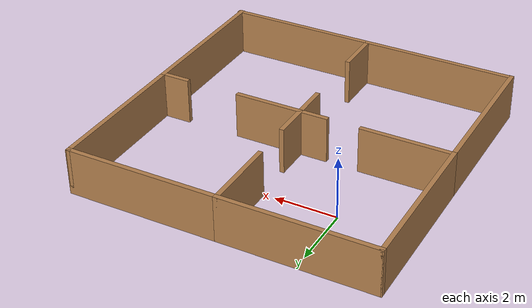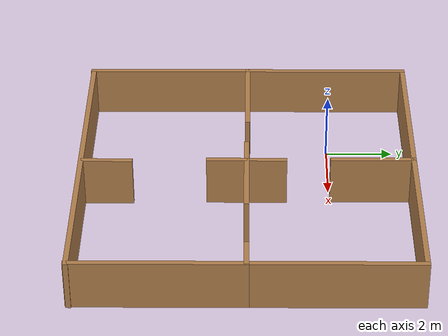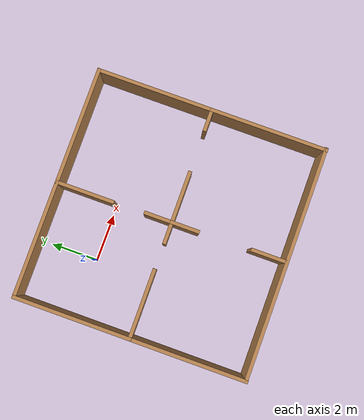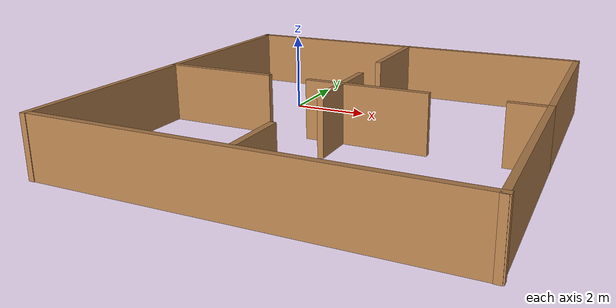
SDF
<?xml version='1.0'?>
<sdf version='1.6'>
  <model name='new_envi'>
    <pose frame=''>2.43 -2.413 0 0 -0 0</pose>
    <link name='Wall_14'>
      <collision name='Wall_14_Collision'>
        <geometry>
          <box>
            <size>5 0.15 1.5</size>
          </box>
        </geometry>
        <pose frame=''>0 0 0.75 0 -0 0</pose>
      </collision>
      <visual name='Wall_14_Visual'>
        <pose frame=''>0 0 0.75 0 -0 0</pose>
        <geometry>
          <box>
            <size>5 0.15 1.5</size>
          </box>
        </geometry>
        <material>
          <script>
            <uri>file://media/materials/scripts/gazebo.material</uri>
            <name>Gazebo/Wood</name>
          </script>
          <ambient>1 1 1 1</ambient>
        </material>
        <meta>
          <layer>0</layer>
        </meta>
      </visual>
      <pose frame=''>-2.439 4.85 0 0 -0 0</pose>
    </link>
    <link name='Wall_16'>
      <collision name='Wall_16_Collision'>
        <geometry>
          <box>
            <size>5 0.15 1.5</size>
          </box>
        </geometry>
        <pose frame=''>0 0 0.75 0 -0 0</pose>
      </collision>
      <visual name='Wall_16_Visual'>
        <pose frame=''>0 0 0.75 0 -0 0</pose>
        <geometry>
          <box>
            <size>5 0.15 1.5</size>
          </box>
        </geometry>
        <material>
          <script>
            <uri>file://media/materials/scripts/gazebo.material</uri>
            <name>Gazebo/Wood</name>
          </script>
          <ambient>1 1 1 1</ambient>
        </material>
        <meta>
          <layer>0</layer>
        </meta>
      </visual>
      <pose frame=''>-4.864 2.425 0 0 -0 -1.5708</pose>
    </link>
    <link name='Wall_18'>
      <collision name='Wall_18_Collision'>
        <geometry>
          <box>
            <size>3 0.15 1.5</size>
          </box>
        </geometry>
        <pose frame=''>0 0 0.75 0 -0 0</pose>
      </collision>
      <visual name='Wall_18_Visual'>
        <pose frame=''>0 0 0.75 0 -0 0</pose>
        <geometry>
          <box>
            <size>3 0.15 1.5</size>
          </box>
        </geometry>
        <material>
          <script>
            <uri>file://media/materials/scripts/gazebo.material</uri>
            <name>Gazebo/Wood</name>
          </script>
          <ambient>1 1 1 1</ambient>
        </material>
        <meta>
          <layer>0</layer>
        </meta>
      </visual>
      <pose frame=''>-3.439 -0 0 0 -0 0</pose>
    </link>
    <link name='Wall_20'>
      <collision name='Wall_20_Collision'>
        <geometry>
          <box>
            <size>2.5 0.15 1.5</size>
          </box>
        </geometry>
        <pose frame=''>0 0 0.75 0 -0 0</pose>
      </collision>
      <visual name='Wall_20_Visual'>
        <pose frame=''>0 0 0.75 0 -0 0</pose>
        <geometry>
          <box>
            <size>2.5 0.15 1.5</size>
          </box>
        </geometry>
        <material>
          <script>
            <uri>file://media/materials/scripts/gazebo.material</uri>
            <name>Gazebo/Wood</name>
          </script>
          <ambient>1 1 1 1</ambient>
        </material>
        <meta>
          <layer>0</layer>
        </meta>
      </visual>
      <pose frame=''>-0.014 3.675 0 0 -0 -1.5708</pose>
    </link>
    <link name='Wall_22'>
      <collision name='Wall_22_Collision'>
        <geometry>
          <box>
            <size>1.25 0.15 1.5</size>
          </box>
        </geometry>
        <pose frame=''>0 0 0.75 0 -0 0</pose>
      </collision>
      <visual name='Wall_22_Visual'>
        <pose frame=''>0 0 0.75 0 -0 0</pose>
        <geometry>
          <box>
            <size>1.25 0.15 1.5</size>
          </box>
        </geometry>
        <material>
          <script>
            <uri>file://media/materials/scripts/gazebo.material</uri>
            <name>Gazebo/Wood</name>
          </script>
          <ambient>1 1 1 1</ambient>
        </material>
        <meta>
          <layer>0</layer>
        </meta>
      </visual>
      <pose frame=''>0.019 0.537 0 0 -0 -1.5708</pose>
    </link>
    <link name='Wall_23'>
      <collision name='Wall_23_Collision'>
        <geometry>
          <box>
            <size>1 0.15 1.5</size>
          </box>
        </geometry>
        <pose frame=''>0 0 0.75 0 -0 0</pose>
      </collision>
      <visual name='Wall_23_Visual'>
        <pose frame=''>0 0 0.75 0 -0 0</pose>
        <geometry>
          <box>
            <size>1 0.15 1.5</size>
          </box>
        </geometry>
        <material>
          <script>
            <uri>file://media/materials/scripts/gazebo.material</uri>
            <name>Gazebo/Wood</name>
          </script>
          <ambient>1 1 1 1</ambient>
        </material>
        <meta>
          <layer>0</layer>
        </meta>
      </visual>
      <pose frame=''>-0.406 -0.013 0 0 -0 3.14159</pose>
    </link>
    <link name='Wall_27'>
      <collision name='Wall_27_Collision'>
        <geometry>
          <box>
            <size>5 0.15 1.5</size>
          </box>
        </geometry>
        <pose frame=''>0 0 0.75 0 -0 0</pose>
      </collision>
      <visual name='Wall_27_Visual'>
        <pose frame=''>0 0 0.75 0 -0 0</pose>
        <geometry>
          <box>
            <size>5 0.15 1.5</size>
          </box>
        </geometry>
        <material>
          <script>
            <uri>file://media/materials/scripts/gazebo.material</uri>
            <name>Gazebo/Wood</name>
          </script>
          <ambient>1 1 1 1</ambient>
        </material>
        <meta>
          <layer>0</layer>
        </meta>
      </visual>
      <pose frame=''>2.411 4.85 0 0 -0 0</pose>
    </link>
    <link name='Wall_28'>
      <collision name='Wall_28_Collision'>
        <geometry>
          <box>
            <size>5 0.15 1.5</size>
          </box>
        </geometry>
        <pose frame=''>0 0 0.75 0 -0 0</pose>
      </collision>
      <visual name='Wall_28_Visual'>
        <pose frame=''>0 0 0.75 0 -0 0</pose>
        <geometry>
          <box>
            <size>5 0.15 1.5</size>
          </box>
        </geometry>
        <material>
          <script>
            <uri>file://media/materials/scripts/gazebo.material</uri>
            <name>Gazebo/Wood</name>
          </script>
          <ambient>1 1 1 1</ambient>
        </material>
        <meta>
          <layer>0</layer>
        </meta>
      </visual>
      <pose frame=''>4.836 2.425 0 0 -0 -1.5708</pose>
    </link>
    <link name='Wall_29'>
      <collision name='Wall_29_Collision'>
        <geometry>
          <box>
            <size>1 0.15 1.5</size>
          </box>
        </geometry>
        <pose frame=''>0 0 0.75 0 -0 0</pose>
      </collision>
      <visual name='Wall_29_Visual'>
        <pose frame=''>0 0 0.75 0 -0 0</pose>
        <geometry>
          <box>
            <size>1 0.15 1.5</size>
          </box>
        </geometry>
        <material>
          <script>
            <uri>file://media/materials/scripts/gazebo.material</uri>
            <name>Gazebo/Wood</name>
          </script>
          <ambient>1 1 1 1</ambient>
        </material>
        <meta>
          <layer>0</layer>
        </meta>
      </visual>
      <pose frame=''>4.411 -0 0 0 -0 3.14159</pose>
    </link>
    <link name='Wall_31'>
      <collision name='Wall_31_Collision'>
        <geometry>
          <box>
            <size>2.25 0.15 1.5</size>
          </box>
        </geometry>
        <pose frame=''>0 0 0.75 0 -0 0</pose>
      </collision>
      <visual name='Wall_31_Visual'>
        <pose frame=''>0 0 0.75 0 -0 0</pose>
        <geometry>
          <box>
            <size>2.25 0.15 1.5</size>
          </box>
        </geometry>
        <material>
          <script>
            <uri>file://media/materials/scripts/gazebo.material</uri>
            <name>Gazebo/Wood</name>
          </script>
          <ambient>1 1 1 1</ambient>
        </material>
        <meta>
          <layer>0</layer>
        </meta>
      </visual>
      <pose frame=''>1.069 -0.013 0 0 -0 0</pose>
    </link>
    <link name='Wall_35'>
      <collision name='Wall_35_Collision'>
        <geometry>
          <box>
            <size>9.75 0.15 1.5</size>
          </box>
        </geometry>
        <pose frame=''>0 0 0.75 0 -0 0</pose>
      </collision>
      <visual name='Wall_35_Visual'>
        <pose frame=''>0 0 0.75 0 -0 0</pose>
        <geometry>
          <box>
            <size>9.75 0.15 1.5</size>
          </box>
        </geometry>
        <material>
          <script>
            <uri>file://media/materials/scripts/gazebo.material</uri>
            <name>Gazebo/Wood</name>
          </script>
          <ambient>1 1 1 1</ambient>
        </material>
        <meta>
          <layer>0</layer>
        </meta>
      </visual>
      <pose frame=''>0.064 -4.835 0 0 -0 0</pose>
    </link>
    <link name='Wall_37'>
      <collision name='Wall_37_Collision'>
        <geometry>
          <box>
            <size>5 0.15 1.5</size>
          </box>
        </geometry>
        <pose frame=''>0 0 0.75 0 -0 0</pose>
      </collision>
      <visual name='Wall_37_Visual'>
        <pose frame=''>0 0 0.75 0 -0 0</pose>
        <geometry>
          <box>
            <size>5 0.15 1.5</size>
          </box>
        </geometry>
        <material>
          <script>
            <uri>file://media/materials/scripts/gazebo.material</uri>
            <name>Gazebo/Wood</name>
          </script>
          <ambient>1 1 1 1</ambient>
        </material>
        <meta>
          <layer>0</layer>
        </meta>
      </visual>
      <pose frame=''>4.836 -2.425 0 0 -0 -1.5708</pose>
    </link>
    <link name='Wall_39'>
      <collision name='Wall_39_Collision'>
        <geometry>
          <box>
            <size>5 0.15 1.5</size>
          </box>
        </geometry>
        <pose frame=''>0 0 0.75 0 -0 0</pose>
      </collision>
      <visual name='Wall_39_Visual'>
        <pose frame=''>0 0 0.75 0 -0 0</pose>
        <geometry>
          <box>
            <size>5 0.15 1.5</size>
          </box>
        </geometry>
        <material>
          <script>
            <uri>file://media/materials/scripts/gazebo.material</uri>
            <name>Gazebo/Wood</name>
          </script>
          <ambient>1 1 1 1</ambient>
        </material>
        <meta>
          <layer>0</layer>
        </meta>
      </visual>
      <pose frame=''>-4.864 -2.425 0 0 -0 -1.5708</pose>
    </link>
    <link name='Wall_41'>
      <collision name='Wall_41_Collision'>
        <geometry>
          <box>
            <size>1.25 0.15 1.5</size>
          </box>
        </geometry>
        <pose frame=''>0 0 0.75 0 -0 0</pose>
      </collision>
      <visual name='Wall_41_Visual'>
        <pose frame=''>0 0 0.75 0 -0 0</pose>
        <geometry>
          <box>
            <size>1.25 0.15 1.5</size>
          </box>
        </geometry>
        <material>
          <script>
            <uri>file://media/materials/scripts/gazebo.material</uri>
            <name>Gazebo/Wood</name>
          </script>
          <ambient>1 1 1 1</ambient>
        </material>
        <meta>
          <layer>0</layer>
        </meta>
      </visual>
      <pose frame=''>0.019 -0.563 0 0 -0 -1.5708</pose>
    </link>
    <link name='Wall_43'>
      <collision name='Wall_43_Collision'>
        <geometry>
          <box>
            <size>1.5 0.15 1.5</size>
          </box>
        </geometry>
        <pose frame=''>0 0 0.75 0 -0 0</pose>
      </collision>
      <visual name='Wall_43_Visual'>
        <pose frame=''>0 0 0.75 0 -0 0</pose>
        <geometry>
          <box>
            <size>1.5 0.15 1.5</size>
          </box>
        </geometry>
        <material>
          <script>
            <uri>file://media/materials/scripts/gazebo.material</uri>
            <name>Gazebo/Wood</name>
          </script>
          <ambient>1 1 1 1</ambient>
        </material>
        <meta>
          <layer>0</layer>
        </meta>
      </visual>
      <pose frame=''>0.064 -4.086 0 0 -0 -1.5708</pose>
    </link>
    <static>1</static>
  </model>
</sdf>
